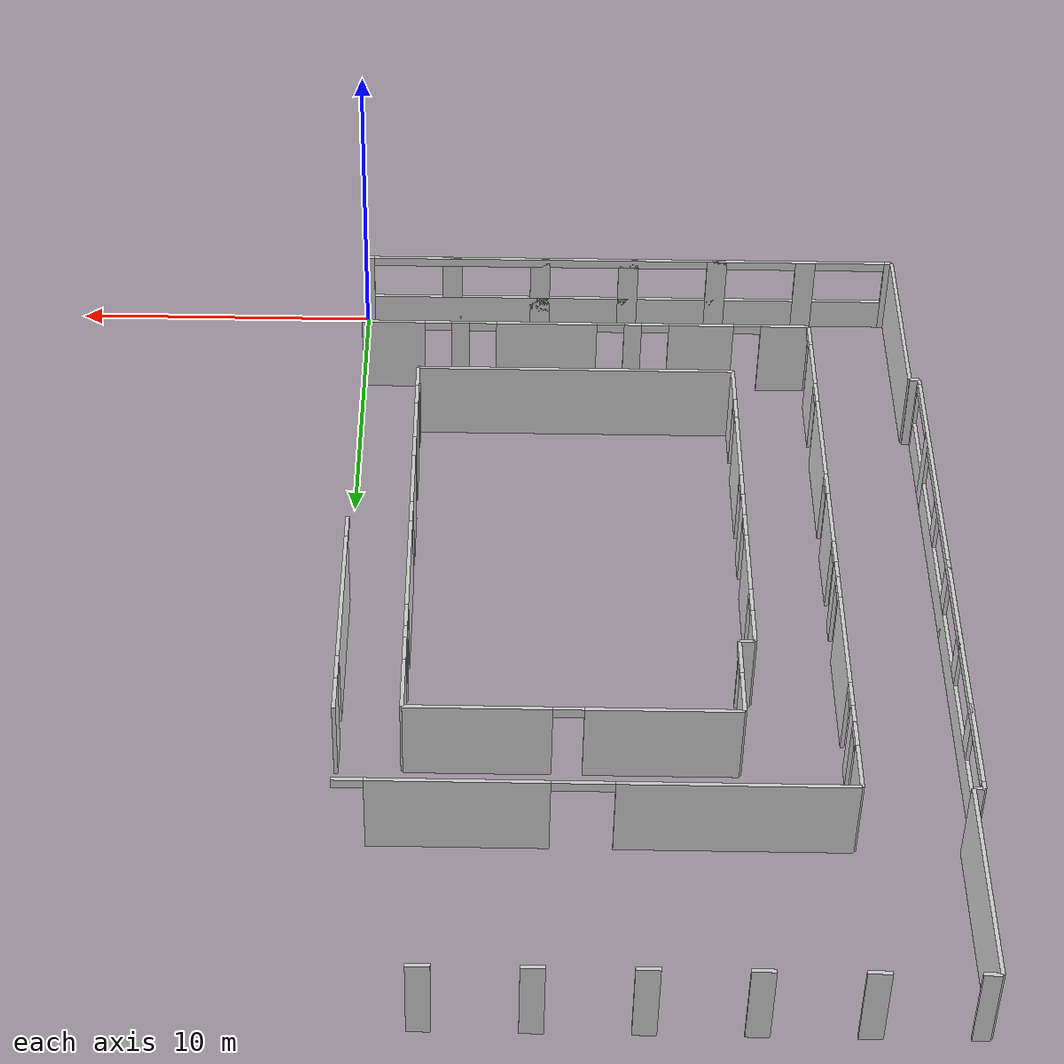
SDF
<sdf version="1.10">
 <model name="fourth_floor_walls">
  <static>true</static>
  <link name="exteriors_001_solid">
   <pose>-0.1270 0.0000 1.3750 0 0 3.141593</pose>
   <collision name="exteriors_001_solid_collision">
    <geometry><box><size>0.2540 0.1199 2.7501</size></box></geometry>
   </collision>
   <visual name="exteriors_001_solid_visual">
    <geometry><box><size>0.2540 0.1199 2.7501</size></box></geometry>
    <material><ambient>0.82 0.82 0.82 1</ambient><diffuse>0.82 0.82 0.82 1</diffuse></material>
   </visual>
  </link>
  <link name="exteriors_002_windows_block_lower_strip">
   <pose>-9.0583 0.0000 0.5461 0 0 3.141593</pose>
   <collision name="exteriors_002_windows_block_lower_strip_collision">
    <geometry><box><size>17.6086 0.1199 1.0922</size></box></geometry>
   </collision>
   <visual name="exteriors_002_windows_block_lower_strip_visual">
    <geometry><box><size>17.6086 0.1199 1.0922</size></box></geometry>
    <material><ambient>0.82 0.82 0.82 1</ambient><diffuse>0.82 0.82 0.82 1</diffuse></material>
   </visual>
  </link>
  <link name="exteriors_002_windows_block_upper_strip">
   <pose>-9.0583 0.0000 2.5942 0 0 3.141593</pose>
   <collision name="exteriors_002_windows_block_upper_strip_collision">
    <geometry><box><size>17.6086 0.1199 0.3117</size></box></geometry>
   </collision>
   <visual name="exteriors_002_windows_block_upper_strip_visual">
    <geometry><box><size>17.6086 0.1199 0.3117</size></box></geometry>
    <material><ambient>0.82 0.82 0.82 1</ambient><diffuse>0.82 0.82 0.82 1</diffuse></material>
   </visual>
  </link>
  <link name="exteriors_002_windows_block_post_1">
   <pose>-2.9623 0.0000 1.3750 0 0 3.141593</pose>
   <collision name="exteriors_002_windows_block_post_1_collision">
    <geometry><box><size>0.6794 0.1199 2.7501</size></box></geometry>
   </collision>
   <visual name="exteriors_002_windows_block_post_1_visual">
    <geometry><box><size>0.6794 0.1199 2.7501</size></box></geometry>
    <material><ambient>0.82 0.82 0.82 1</ambient><diffuse>0.82 0.82 0.82 1</diffuse></material>
   </visual>
  </link>
  <link name="exteriors_002_windows_block_post_2">
   <pose>-6.0103 0.0000 1.3750 0 0 3.141593</pose>
   <collision name="exteriors_002_windows_block_post_2_collision">
    <geometry><box><size>0.6794 0.1199 2.7501</size></box></geometry>
   </collision>
   <visual name="exteriors_002_windows_block_post_2_visual">
    <geometry><box><size>0.6794 0.1199 2.7501</size></box></geometry>
    <material><ambient>0.82 0.82 0.82 1</ambient><diffuse>0.82 0.82 0.82 1</diffuse></material>
   </visual>
  </link>
  <link name="exteriors_002_windows_block_post_3">
   <pose>-9.0583 0.0000 1.3750 0 0 3.141593</pose>
   <collision name="exteriors_002_windows_block_post_3_collision">
    <geometry><box><size>0.6794 0.1199 2.7501</size></box></geometry>
   </collision>
   <visual name="exteriors_002_windows_block_post_3_visual">
    <geometry><box><size>0.6794 0.1199 2.7501</size></box></geometry>
    <material><ambient>0.82 0.82 0.82 1</ambient><diffuse>0.82 0.82 0.82 1</diffuse></material>
   </visual>
  </link>
  <link name="exteriors_002_windows_block_post_4">
   <pose>-12.1063 0.0000 1.3750 0 0 3.141593</pose>
   <collision name="exteriors_002_windows_block_post_4_collision">
    <geometry><box><size>0.6794 0.1199 2.7501</size></box></geometry>
   </collision>
   <visual name="exteriors_002_windows_block_post_4_visual">
    <geometry><box><size>0.6794 0.1199 2.7501</size></box></geometry>
    <material><ambient>0.82 0.82 0.82 1</ambient><diffuse>0.82 0.82 0.82 1</diffuse></material>
   </visual>
  </link>
  <link name="exteriors_002_windows_block_post_5">
   <pose>-15.1543 0.0000 1.3750 0 0 3.141593</pose>
   <collision name="exteriors_002_windows_block_post_5_collision">
    <geometry><box><size>0.6794 0.1199 2.7501</size></box></geometry>
   </collision>
   <visual name="exteriors_002_windows_block_post_5_visual">
    <geometry><box><size>0.6794 0.1199 2.7501</size></box></geometry>
    <material><ambient>0.82 0.82 0.82 1</ambient><diffuse>0.82 0.82 0.82 1</diffuse></material>
   </visual>
  </link>
  <link name="exteriors_003_solid">
   <pose>-17.9895 0.0000 1.3750 0 0 3.141593</pose>
   <collision name="exteriors_003_solid_collision">
    <geometry><box><size>0.2540 0.1199 2.7501</size></box></geometry>
   </collision>
   <visual name="exteriors_003_solid_visual">
    <geometry><box><size>0.2540 0.1199 2.7501</size></box></geometry>
    <material><ambient>0.82 0.82 0.82 1</ambient><diffuse>0.82 0.82 0.82 1</diffuse></material>
   </visual>
  </link>
  <link name="exteriors_005_solid">
   <pose>-18.1166 3.1623 1.3750 0 0 1.570796</pose>
   <collision name="exteriors_005_solid_collision">
    <geometry><box><size>6.3246 0.1199 2.7501</size></box></geometry>
   </collision>
   <visual name="exteriors_005_solid_visual">
    <geometry><box><size>6.3246 0.1199 2.7501</size></box></geometry>
    <material><ambient>0.82 0.82 0.82 1</ambient><diffuse>0.82 0.82 0.82 1</diffuse></material>
   </visual>
  </link>
  <link name="exteriors_007_solid">
   <pose>-18.2690 6.3246 1.3750 0 0 3.141593</pose>
   <collision name="exteriors_007_solid_collision">
    <geometry><box><size>0.3048 0.1199 2.7501</size></box></geometry>
   </collision>
   <visual name="exteriors_007_solid_visual">
    <geometry><box><size>0.3048 0.1199 2.7501</size></box></geometry>
    <material><ambient>0.82 0.82 0.82 1</ambient><diffuse>0.82 0.82 0.82 1</diffuse></material>
   </visual>
  </link>
  <link name="exteriors_009_solid">
   <pose>-18.4214 6.4516 1.3750 0 0 1.570796</pose>
   <collision name="exteriors_009_solid_collision">
    <geometry><box><size>0.2540 0.1199 2.7501</size></box></geometry>
   </collision>
   <visual name="exteriors_009_solid_visual">
    <geometry><box><size>0.2540 0.1199 2.7501</size></box></geometry>
    <material><ambient>0.82 0.82 0.82 1</ambient><diffuse>0.82 0.82 0.82 1</diffuse></material>
   </visual>
  </link>
  <link name="exteriors_010_windows_block_lower_strip">
   <pose>-18.4214 15.3829 0.5461 0 0 1.570796</pose>
   <collision name="exteriors_010_windows_block_lower_strip_collision">
    <geometry><box><size>17.6086 0.1199 1.0922</size></box></geometry>
   </collision>
   <visual name="exteriors_010_windows_block_lower_strip_visual">
    <geometry><box><size>17.6086 0.1199 1.0922</size></box></geometry>
    <material><ambient>0.82 0.82 0.82 1</ambient><diffuse>0.82 0.82 0.82 1</diffuse></material>
   </visual>
  </link>
  <link name="exteriors_010_windows_block_upper_strip">
   <pose>-18.4214 15.3829 2.5942 0 0 1.570796</pose>
   <collision name="exteriors_010_windows_block_upper_strip_collision">
    <geometry><box><size>17.6086 0.1199 0.3117</size></box></geometry>
   </collision>
   <visual name="exteriors_010_windows_block_upper_strip_visual">
    <geometry><box><size>17.6086 0.1199 0.3117</size></box></geometry>
    <material><ambient>0.82 0.82 0.82 1</ambient><diffuse>0.82 0.82 0.82 1</diffuse></material>
   </visual>
  </link>
  <link name="exteriors_010_windows_block_post_1">
   <pose>-18.4214 9.2869 1.3750 0 0 1.570796</pose>
   <collision name="exteriors_010_windows_block_post_1_collision">
    <geometry><box><size>0.6794 0.1199 2.7501</size></box></geometry>
   </collision>
   <visual name="exteriors_010_windows_block_post_1_visual">
    <geometry><box><size>0.6794 0.1199 2.7501</size></box></geometry>
    <material><ambient>0.82 0.82 0.82 1</ambient><diffuse>0.82 0.82 0.82 1</diffuse></material>
   </visual>
  </link>
  <link name="exteriors_010_windows_block_post_2">
   <pose>-18.4214 12.3349 1.3750 0 0 1.570796</pose>
   <collision name="exteriors_010_windows_block_post_2_collision">
    <geometry><box><size>0.6794 0.1199 2.7501</size></box></geometry>
   </collision>
   <visual name="exteriors_010_windows_block_post_2_visual">
    <geometry><box><size>0.6794 0.1199 2.7501</size></box></geometry>
    <material><ambient>0.82 0.82 0.82 1</ambient><diffuse>0.82 0.82 0.82 1</diffuse></material>
   </visual>
  </link>
  <link name="exteriors_010_windows_block_post_3">
   <pose>-18.4214 15.3829 1.3750 0 0 1.570796</pose>
   <collision name="exteriors_010_windows_block_post_3_collision">
    <geometry><box><size>0.6794 0.1199 2.7501</size></box></geometry>
   </collision>
   <visual name="exteriors_010_windows_block_post_3_visual">
    <geometry><box><size>0.6794 0.1199 2.7501</size></box></geometry>
    <material><ambient>0.82 0.82 0.82 1</ambient><diffuse>0.82 0.82 0.82 1</diffuse></material>
   </visual>
  </link>
  <link name="exteriors_010_windows_block_post_4">
   <pose>-18.4214 18.4309 1.3750 0 0 1.570796</pose>
   <collision name="exteriors_010_windows_block_post_4_collision">
    <geometry><box><size>0.6794 0.1199 2.7501</size></box></geometry>
   </collision>
   <visual name="exteriors_010_windows_block_post_4_visual">
    <geometry><box><size>0.6794 0.1199 2.7501</size></box></geometry>
    <material><ambient>0.82 0.82 0.82 1</ambient><diffuse>0.82 0.82 0.82 1</diffuse></material>
   </visual>
  </link>
  <link name="exteriors_010_windows_block_post_5">
   <pose>-18.4214 21.4789 1.3750 0 0 1.570796</pose>
   <collision name="exteriors_010_windows_block_post_5_collision">
    <geometry><box><size>0.6794 0.1199 2.7501</size></box></geometry>
   </collision>
   <visual name="exteriors_010_windows_block_post_5_visual">
    <geometry><box><size>0.6794 0.1199 2.7501</size></box></geometry>
    <material><ambient>0.82 0.82 0.82 1</ambient><diffuse>0.82 0.82 0.82 1</diffuse></material>
   </visual>
  </link>
  <link name="exteriors_011_solid">
   <pose>-18.4214 24.3142 1.3750 0 0 1.570796</pose>
   <collision name="exteriors_011_solid_collision">
    <geometry><box><size>0.2540 0.1199 2.7501</size></box></geometry>
   </collision>
   <visual name="exteriors_011_solid_visual">
    <geometry><box><size>0.2540 0.1199 2.7501</size></box></geometry>
    <material><ambient>0.82 0.82 0.82 1</ambient><diffuse>0.82 0.82 0.82 1</diffuse></material>
   </visual>
  </link>
  <link name="exteriors_013_solid">
   <pose>-18.2690 24.4412 1.3750 0 0 0.000000</pose>
   <collision name="exteriors_013_solid_collision">
    <geometry><box><size>0.3048 0.1199 2.7501</size></box></geometry>
   </collision>
   <visual name="exteriors_013_solid_visual">
    <geometry><box><size>0.3048 0.1199 2.7501</size></box></geometry>
    <material><ambient>0.82 0.82 0.82 1</ambient><diffuse>0.82 0.82 0.82 1</diffuse></material>
   </visual>
  </link>
  <link name="exteriors_015_solid">
   <pose>-18.1166 27.7431 1.3750 0 0 1.570796</pose>
   <collision name="exteriors_015_solid_collision">
    <geometry><box><size>6.6040 0.1199 2.7501</size></box></geometry>
   </collision>
   <visual name="exteriors_015_solid_visual">
    <geometry><box><size>6.6040 0.1199 2.7501</size></box></geometry>
    <material><ambient>0.82 0.82 0.82 1</ambient><diffuse>0.82 0.82 0.82 1</diffuse></material>
   </visual>
  </link>
  <link name="exteriors_017_solid">
   <pose>-17.8625 31.0451 1.3750 0 0 0.000000</pose>
   <collision name="exteriors_017_solid_collision">
    <geometry><box><size>0.5080 0.1199 2.7501</size></box></geometry>
   </collision>
   <visual name="exteriors_017_solid_visual">
    <geometry><box><size>0.5080 0.1199 2.7501</size></box></geometry>
    <material><ambient>0.82 0.82 0.82 1</ambient><diffuse>0.82 0.82 0.82 1</diffuse></material>
   </visual>
  </link>
  <link name="exteriors_018_windows_block_post_1">
   <pose>-14.9003 31.0451 1.3750 0 0 0.000000</pose>
   <collision name="exteriors_018_windows_block_post_1_collision">
    <geometry><box><size>0.6794 0.1199 2.7501</size></box></geometry>
   </collision>
   <visual name="exteriors_018_windows_block_post_1_visual">
    <geometry><box><size>0.6794 0.1199 2.7501</size></box></geometry>
    <material><ambient>0.82 0.82 0.82 1</ambient><diffuse>0.82 0.82 0.82 1</diffuse></material>
   </visual>
  </link>
  <link name="exteriors_018_windows_block_post_2">
   <pose>-11.8523 31.0451 1.3750 0 0 0.000000</pose>
   <collision name="exteriors_018_windows_block_post_2_collision">
    <geometry><box><size>0.6794 0.1199 2.7501</size></box></geometry>
   </collision>
   <visual name="exteriors_018_windows_block_post_2_visual">
    <geometry><box><size>0.6794 0.1199 2.7501</size></box></geometry>
    <material><ambient>0.82 0.82 0.82 1</ambient><diffuse>0.82 0.82 0.82 1</diffuse></material>
   </visual>
  </link>
  <link name="exteriors_018_windows_block_post_3">
   <pose>-8.8043 31.0451 1.3750 0 0 0.000000</pose>
   <collision name="exteriors_018_windows_block_post_3_collision">
    <geometry><box><size>0.6794 0.1199 2.7501</size></box></geometry>
   </collision>
   <visual name="exteriors_018_windows_block_post_3_visual">
    <geometry><box><size>0.6794 0.1199 2.7501</size></box></geometry>
    <material><ambient>0.82 0.82 0.82 1</ambient><diffuse>0.82 0.82 0.82 1</diffuse></material>
   </visual>
  </link>
  <link name="exteriors_018_windows_block_post_4">
   <pose>-5.7563 31.0451 1.3750 0 0 0.000000</pose>
   <collision name="exteriors_018_windows_block_post_4_collision">
    <geometry><box><size>0.6794 0.1199 2.7501</size></box></geometry>
   </collision>
   <visual name="exteriors_018_windows_block_post_4_visual">
    <geometry><box><size>0.6794 0.1199 2.7501</size></box></geometry>
    <material><ambient>0.82 0.82 0.82 1</ambient><diffuse>0.82 0.82 0.82 1</diffuse></material>
   </visual>
  </link>
  <link name="exteriors_018_windows_block_post_5">
   <pose>-2.7083 31.0451 1.3750 0 0 0.000000</pose>
   <collision name="exteriors_018_windows_block_post_5_collision">
    <geometry><box><size>0.6794 0.1199 2.7501</size></box></geometry>
   </collision>
   <visual name="exteriors_018_windows_block_post_5_visual">
    <geometry><box><size>0.6794 0.1199 2.7501</size></box></geometry>
    <material><ambient>0.82 0.82 0.82 1</ambient><diffuse>0.82 0.82 0.82 1</diffuse></material>
   </visual>
  </link>
  <link name="hallways_001_solid">
   <pose>-1.0541 3.5814 1.3750 0 0 3.141593</pose>
   <collision name="hallways_001_solid_collision">
    <geometry><box><size>2.1082 0.1199 2.7501</size></box></geometry>
   </collision>
   <visual name="hallways_001_solid_visual">
    <geometry><box><size>2.1082 0.1199 2.7501</size></box></geometry>
    <material><ambient>0.82 0.82 0.82 1</ambient><diffuse>0.82 0.82 0.82 1</diffuse></material>
   </visual>
  </link>
  <link name="hallways_002_door_lintel">
   <pose>-2.5654 3.5814 2.5942 0 0 3.141593</pose>
   <collision name="hallways_002_door_lintel_collision">
    <geometry><box><size>0.9144 0.1199 0.3117</size></box></geometry>
   </collision>
   <visual name="hallways_002_door_lintel_visual">
    <geometry><box><size>0.9144 0.1199 0.3117</size></box></geometry>
    <material><ambient>0.82 0.82 0.82 1</ambient><diffuse>0.82 0.82 0.82 1</diffuse></material>
   </visual>
  </link>
  <link name="hallways_003_solid">
   <pose>-3.3147 3.5814 1.3750 0 0 3.141593</pose>
   <collision name="hallways_003_solid_collision">
    <geometry><box><size>0.5842 0.1199 2.7501</size></box></geometry>
   </collision>
   <visual name="hallways_003_solid_visual">
    <geometry><box><size>0.5842 0.1199 2.7501</size></box></geometry>
    <material><ambient>0.82 0.82 0.82 1</ambient><diffuse>0.82 0.82 0.82 1</diffuse></material>
   </visual>
  </link>
  <link name="hallways_004_door_lintel">
   <pose>-4.0640 3.5814 2.5942 0 0 3.141593</pose>
   <collision name="hallways_004_door_lintel_collision">
    <geometry><box><size>0.9144 0.1199 0.3117</size></box></geometry>
   </collision>
   <visual name="hallways_004_door_lintel_visual">
    <geometry><box><size>0.9144 0.1199 0.3117</size></box></geometry>
    <material><ambient>0.82 0.82 0.82 1</ambient><diffuse>0.82 0.82 0.82 1</diffuse></material>
   </visual>
  </link>
  <link name="hallways_005_solid">
   <pose>-6.2103 3.5814 1.3750 0 0 3.141593</pose>
   <collision name="hallways_005_solid_collision">
    <geometry><box><size>3.3782 0.1199 2.7501</size></box></geometry>
   </collision>
   <visual name="hallways_005_solid_visual">
    <geometry><box><size>3.3782 0.1199 2.7501</size></box></geometry>
    <material><ambient>0.82 0.82 0.82 1</ambient><diffuse>0.82 0.82 0.82 1</diffuse></material>
   </visual>
  </link>
  <link name="hallways_006_door_lintel">
   <pose>-8.3566 3.5814 2.5942 0 0 3.141593</pose>
   <collision name="hallways_006_door_lintel_collision">
    <geometry><box><size>0.9144 0.1199 0.3117</size></box></geometry>
   </collision>
   <visual name="hallways_006_door_lintel_visual">
    <geometry><box><size>0.9144 0.1199 0.3117</size></box></geometry>
    <material><ambient>0.82 0.82 0.82 1</ambient><diffuse>0.82 0.82 0.82 1</diffuse></material>
   </visual>
  </link>
  <link name="hallways_007_solid">
   <pose>-9.1059 3.5814 1.3750 0 0 3.141593</pose>
   <collision name="hallways_007_solid_collision">
    <geometry><box><size>0.5842 0.1199 2.7501</size></box></geometry>
   </collision>
   <visual name="hallways_007_solid_visual">
    <geometry><box><size>0.5842 0.1199 2.7501</size></box></geometry>
    <material><ambient>0.82 0.82 0.82 1</ambient><diffuse>0.82 0.82 0.82 1</diffuse></material>
   </visual>
  </link>
  <link name="hallways_008_door_lintel">
   <pose>-9.8552 3.5814 2.5942 0 0 3.141593</pose>
   <collision name="hallways_008_door_lintel_collision">
    <geometry><box><size>0.9144 0.1199 0.3117</size></box></geometry>
   </collision>
   <visual name="hallways_008_door_lintel_visual">
    <geometry><box><size>0.9144 0.1199 0.3117</size></box></geometry>
    <material><ambient>0.82 0.82 0.82 1</ambient><diffuse>0.82 0.82 0.82 1</diffuse></material>
   </visual>
  </link>
  <link name="hallways_009_solid">
   <pose>-11.3982 3.5814 1.3750 0 0 3.141593</pose>
   <collision name="hallways_009_solid_collision">
    <geometry><box><size>2.1717 0.1199 2.7501</size></box></geometry>
   </collision>
   <visual name="hallways_009_solid_visual">
    <geometry><box><size>2.1717 0.1199 2.7501</size></box></geometry>
    <material><ambient>0.82 0.82 0.82 1</ambient><diffuse>0.82 0.82 0.82 1</diffuse></material>
   </visual>
  </link>
  <link name="hallways_010_door_lintel">
   <pose>-12.9413 3.5814 2.5942 0 0 3.141593</pose>
   <collision name="hallways_010_door_lintel_collision">
    <geometry><box><size>0.9144 0.1199 0.3117</size></box></geometry>
   </collision>
   <visual name="hallways_010_door_lintel_visual">
    <geometry><box><size>0.9144 0.1199 0.3117</size></box></geometry>
    <material><ambient>0.82 0.82 0.82 1</ambient><diffuse>0.82 0.82 0.82 1</diffuse></material>
   </visual>
  </link>
  <link name="hallways_011_solid">
   <pose>-14.1986 3.5814 1.3750 0 0 3.141593</pose>
   <collision name="hallways_011_solid_collision">
    <geometry><box><size>1.6002 0.1199 2.7501</size></box></geometry>
   </collision>
   <visual name="hallways_011_solid_visual">
    <geometry><box><size>1.6002 0.1199 2.7501</size></box></geometry>
    <material><ambient>0.82 0.82 0.82 1</ambient><diffuse>0.82 0.82 0.82 1</diffuse></material>
   </visual>
  </link>
  <link name="hallways_013_solid">
   <pose>-14.9987 3.6068 1.3750 0 0 1.570796</pose>
   <collision name="hallways_013_solid_collision">
    <geometry><box><size>0.0508 0.1199 2.7501</size></box></geometry>
   </collision>
   <visual name="hallways_013_solid_visual">
    <geometry><box><size>0.0508 0.1199 2.7501</size></box></geometry>
    <material><ambient>0.82 0.82 0.82 1</ambient><diffuse>0.82 0.82 0.82 1</diffuse></material>
   </visual>
  </link>
  <link name="hallways_014_door_lintel">
   <pose>-14.9987 4.0894 2.5942 0 0 1.570796</pose>
   <collision name="hallways_014_door_lintel_collision">
    <geometry><box><size>0.9144 0.1199 0.3117</size></box></geometry>
   </collision>
   <visual name="hallways_014_door_lintel_visual">
    <geometry><box><size>0.9144 0.1199 0.3117</size></box></geometry>
    <material><ambient>0.82 0.82 0.82 1</ambient><diffuse>0.82 0.82 0.82 1</diffuse></material>
   </visual>
  </link>
  <link name="hallways_015_solid">
   <pose>-14.9987 5.5753 1.3750 0 0 1.570796</pose>
   <collision name="hallways_015_solid_collision">
    <geometry><box><size>2.0574 0.1199 2.7501</size></box></geometry>
   </collision>
   <visual name="hallways_015_solid_visual">
    <geometry><box><size>2.0574 0.1199 2.7501</size></box></geometry>
    <material><ambient>0.82 0.82 0.82 1</ambient><diffuse>0.82 0.82 0.82 1</diffuse></material>
   </visual>
  </link>
  <link name="hallways_016_door_lintel">
   <pose>-14.9987 7.0612 2.5942 0 0 1.570796</pose>
   <collision name="hallways_016_door_lintel_collision">
    <geometry><box><size>0.9144 0.1199 0.3117</size></box></geometry>
   </collision>
   <visual name="hallways_016_door_lintel_visual">
    <geometry><box><size>0.9144 0.1199 0.3117</size></box></geometry>
    <material><ambient>0.82 0.82 0.82 1</ambient><diffuse>0.82 0.82 0.82 1</diffuse></material>
   </visual>
  </link>
  <link name="hallways_017_solid">
   <pose>-14.9987 9.3218 1.3750 0 0 1.570796</pose>
   <collision name="hallways_017_solid_collision">
    <geometry><box><size>3.6068 0.1199 2.7501</size></box></geometry>
   </collision>
   <visual name="hallways_017_solid_visual">
    <geometry><box><size>3.6068 0.1199 2.7501</size></box></geometry>
    <material><ambient>0.82 0.82 0.82 1</ambient><diffuse>0.82 0.82 0.82 1</diffuse></material>
   </visual>
  </link>
  <link name="hallways_018_door_lintel">
   <pose>-14.9987 11.5824 2.5942 0 0 1.570796</pose>
   <collision name="hallways_018_door_lintel_collision">
    <geometry><box><size>0.9144 0.1199 0.3117</size></box></geometry>
   </collision>
   <visual name="hallways_018_door_lintel_visual">
    <geometry><box><size>0.9144 0.1199 0.3117</size></box></geometry>
    <material><ambient>0.82 0.82 0.82 1</ambient><diffuse>0.82 0.82 0.82 1</diffuse></material>
   </visual>
  </link>
  <link name="hallways_019_solid">
   <pose>-14.9987 13.1470 1.3750 0 0 1.570796</pose>
   <collision name="hallways_019_solid_collision">
    <geometry><box><size>2.2149 0.1199 2.7501</size></box></geometry>
   </collision>
   <visual name="hallways_019_solid_visual">
    <geometry><box><size>2.2149 0.1199 2.7501</size></box></geometry>
    <material><ambient>0.82 0.82 0.82 1</ambient><diffuse>0.82 0.82 0.82 1</diffuse></material>
   </visual>
  </link>
  <link name="hallways_020_door_lintel">
   <pose>-14.9987 14.7117 2.5942 0 0 1.570796</pose>
   <collision name="hallways_020_door_lintel_collision">
    <geometry><box><size>0.9144 0.1199 0.3117</size></box></geometry>
   </collision>
   <visual name="hallways_020_door_lintel_visual">
    <geometry><box><size>0.9144 0.1199 0.3117</size></box></geometry>
    <material><ambient>0.82 0.82 0.82 1</ambient><diffuse>0.82 0.82 0.82 1</diffuse></material>
   </visual>
  </link>
  <link name="hallways_021_solid">
   <pose>-14.9987 15.4991 1.3750 0 0 1.570796</pose>
   <collision name="hallways_021_solid_collision">
    <geometry><box><size>0.6604 0.1199 2.7501</size></box></geometry>
   </collision>
   <visual name="hallways_021_solid_visual">
    <geometry><box><size>0.6604 0.1199 2.7501</size></box></geometry>
    <material><ambient>0.82 0.82 0.82 1</ambient><diffuse>0.82 0.82 0.82 1</diffuse></material>
   </visual>
  </link>
  <link name="hallways_022_door_lintel">
   <pose>-14.9987 16.2865 2.5942 0 0 1.570796</pose>
   <collision name="hallways_022_door_lintel_collision">
    <geometry><box><size>0.9144 0.1199 0.3117</size></box></geometry>
   </collision>
   <visual name="hallways_022_door_lintel_visual">
    <geometry><box><size>0.9144 0.1199 0.3117</size></box></geometry>
    <material><ambient>0.82 0.82 0.82 1</ambient><diffuse>0.82 0.82 0.82 1</diffuse></material>
   </visual>
  </link>
  <link name="hallways_023_solid">
   <pose>-14.9987 18.5471 1.3750 0 0 1.570796</pose>
   <collision name="hallways_023_solid_collision">
    <geometry><box><size>3.6068 0.1199 2.7501</size></box></geometry>
   </collision>
   <visual name="hallways_023_solid_visual">
    <geometry><box><size>3.6068 0.1199 2.7501</size></box></geometry>
    <material><ambient>0.82 0.82 0.82 1</ambient><diffuse>0.82 0.82 0.82 1</diffuse></material>
   </visual>
  </link>
  <link name="hallways_024_door_lintel">
   <pose>-14.9987 20.8077 2.5942 0 0 1.570796</pose>
   <collision name="hallways_024_door_lintel_collision">
    <geometry><box><size>0.9144 0.1199 0.3117</size></box></geometry>
   </collision>
   <visual name="hallways_024_door_lintel_visual">
    <geometry><box><size>0.9144 0.1199 0.3117</size></box></geometry>
    <material><ambient>0.82 0.82 0.82 1</ambient><diffuse>0.82 0.82 0.82 1</diffuse></material>
   </visual>
  </link>
  <link name="hallways_025_solid">
   <pose>-14.9987 21.5951 1.3750 0 0 1.570796</pose>
   <collision name="hallways_025_solid_collision">
    <geometry><box><size>0.6604 0.1199 2.7501</size></box></geometry>
   </collision>
   <visual name="hallways_025_solid_visual">
    <geometry><box><size>0.6604 0.1199 2.7501</size></box></geometry>
    <material><ambient>0.82 0.82 0.82 1</ambient><diffuse>0.82 0.82 0.82 1</diffuse></material>
   </visual>
  </link>
  <link name="hallways_026_door_lintel">
   <pose>-14.9987 22.3825 2.5942 0 0 1.570796</pose>
   <collision name="hallways_026_door_lintel_collision">
    <geometry><box><size>0.9144 0.1199 0.3117</size></box></geometry>
   </collision>
   <visual name="hallways_026_door_lintel_visual">
    <geometry><box><size>0.9144 0.1199 0.3117</size></box></geometry>
    <material><ambient>0.82 0.82 0.82 1</ambient><diffuse>0.82 0.82 0.82 1</diffuse></material>
   </visual>
  </link>
  <link name="hallways_027_solid">
   <pose>-14.9987 23.6398 1.3750 0 0 1.570796</pose>
   <collision name="hallways_027_solid_collision">
    <geometry><box><size>1.6002 0.1199 2.7501</size></box></geometry>
   </collision>
   <visual name="hallways_027_solid_visual">
    <geometry><box><size>1.6002 0.1199 2.7501</size></box></geometry>
    <material><ambient>0.82 0.82 0.82 1</ambient><diffuse>0.82 0.82 0.82 1</diffuse></material>
   </visual>
  </link>
  <link name="hallways_029_solid">
   <pose>-11.5443 24.4399 1.3750 0 0 0.000000</pose>
   <collision name="hallways_029_solid_collision">
    <geometry><box><size>6.9088 0.1199 2.7501</size></box></geometry>
   </collision>
   <visual name="hallways_029_solid_visual">
    <geometry><box><size>6.9088 0.1199 2.7501</size></box></geometry>
    <material><ambient>0.82 0.82 0.82 1</ambient><diffuse>0.82 0.82 0.82 1</diffuse></material>
   </visual>
  </link>
  <link name="hallways_030_door_lintel">
   <pose>-7.1755 24.4399 2.5942 0 0 0.000000</pose>
   <collision name="hallways_030_door_lintel_collision">
    <geometry><box><size>1.8288 0.1199 0.3117</size></box></geometry>
   </collision>
   <visual name="hallways_030_door_lintel_visual">
    <geometry><box><size>1.8288 0.1199 0.3117</size></box></geometry>
    <material><ambient>0.82 0.82 0.82 1</ambient><diffuse>0.82 0.82 0.82 1</diffuse></material>
   </visual>
  </link>
  <link name="hallways_031_solid">
   <pose>-3.6195 24.4399 1.3750 0 0 0.000000</pose>
   <collision name="hallways_031_solid_collision">
    <geometry><box><size>5.2832 0.1199 2.7501</size></box></geometry>
   </collision>
   <visual name="hallways_031_solid_visual">
    <geometry><box><size>5.2832 0.1199 2.7501</size></box></geometry>
    <material><ambient>0.82 0.82 0.82 1</ambient><diffuse>0.82 0.82 0.82 1</diffuse></material>
   </visual>
  </link>
  <link name="hallways_032_door_lintel">
   <pose>-0.5207 24.4399 2.5942 0 0 0.000000</pose>
   <collision name="hallways_032_door_lintel_collision">
    <geometry><box><size>0.9144 0.1199 0.3117</size></box></geometry>
   </collision>
   <visual name="hallways_032_door_lintel_visual">
    <geometry><box><size>0.9144 0.1199 0.3117</size></box></geometry>
    <material><ambient>0.82 0.82 0.82 1</ambient><diffuse>0.82 0.82 0.82 1</diffuse></material>
   </visual>
  </link>
  <link name="inner_walls_1_023_solid">
   <pose>0.0063 21.0820 1.3750 0 0 4.712389</pose>
   <collision name="inner_walls_1_023_solid_collision">
    <geometry><box><size>1.2192 0.1199 2.7501</size></box></geometry>
   </collision>
   <visual name="inner_walls_1_023_solid_visual">
    <geometry><box><size>1.2192 0.1199 2.7501</size></box></geometry>
    <material><ambient>0.82 0.82 0.82 1</ambient><diffuse>0.82 0.82 0.82 1</diffuse></material>
   </visual>
  </link>
  <link name="inner_walls_1_024_door_lintel">
   <pose>0.0063 20.0152 2.5942 0 0 4.712389</pose>
   <collision name="inner_walls_1_024_door_lintel_collision">
    <geometry><box><size>0.9144 0.1199 0.3117</size></box></geometry>
   </collision>
   <visual name="inner_walls_1_024_door_lintel_visual">
    <geometry><box><size>0.9144 0.1199 0.3117</size></box></geometry>
    <material><ambient>0.82 0.82 0.82 1</ambient><diffuse>0.82 0.82 0.82 1</diffuse></material>
   </visual>
  </link>
  <link name="inner_walls_1_025_solid">
   <pose>0.0063 16.9418 1.3750 0 0 4.712389</pose>
   <collision name="inner_walls_1_025_solid_collision">
    <geometry><box><size>5.2324 0.1199 2.7501</size></box></geometry>
   </collision>
   <visual name="inner_walls_1_025_solid_visual">
    <geometry><box><size>5.2324 0.1199 2.7501</size></box></geometry>
    <material><ambient>0.82 0.82 0.82 1</ambient><diffuse>0.82 0.82 0.82 1</diffuse></material>
   </visual>
  </link>
  <link name="inner_walls_1_026_door_lintel">
   <pose>0.0063 13.8684 2.5942 0 0 4.712389</pose>
   <collision name="inner_walls_1_026_door_lintel_collision">
    <geometry><box><size>0.9144 0.1199 0.3117</size></box></geometry>
   </collision>
   <visual name="inner_walls_1_026_door_lintel_visual">
    <geometry><box><size>0.9144 0.1199 0.3117</size></box></geometry>
    <material><ambient>0.82 0.82 0.82 1</ambient><diffuse>0.82 0.82 0.82 1</diffuse></material>
   </visual>
  </link>
  <link name="inner_walls_2_001_solid">
   <pose>-7.1450 6.0198 1.3750 0 0 3.141593</pose>
   <collision name="inner_walls_2_001_solid_collision">
    <geometry><box><size>10.3632 0.1199 2.7501</size></box></geometry>
   </collision>
   <visual name="inner_walls_2_001_solid_visual">
    <geometry><box><size>10.3632 0.1199 2.7501</size></box></geometry>
    <material><ambient>0.82 0.82 0.82 1</ambient><diffuse>0.82 0.82 0.82 1</diffuse></material>
   </visual>
  </link>
  <link name="inner_walls_2_003_solid">
   <pose>-12.3266 6.7437 1.3750 0 0 1.570796</pose>
   <collision name="inner_walls_2_003_solid_collision">
    <geometry><box><size>1.4478 0.1199 2.7501</size></box></geometry>
   </collision>
   <visual name="inner_walls_2_003_solid_visual">
    <geometry><box><size>1.4478 0.1199 2.7501</size></box></geometry>
    <material><ambient>0.82 0.82 0.82 1</ambient><diffuse>0.82 0.82 0.82 1</diffuse></material>
   </visual>
  </link>
  <link name="inner_walls_2_004_door_lintel">
   <pose>-12.3266 7.9248 2.5942 0 0 1.570796</pose>
   <collision name="inner_walls_2_004_door_lintel_collision">
    <geometry><box><size>0.9144 0.1199 0.3117</size></box></geometry>
   </collision>
   <visual name="inner_walls_2_004_door_lintel_visual">
    <geometry><box><size>0.9144 0.1199 0.3117</size></box></geometry>
    <material><ambient>0.82 0.82 0.82 1</ambient><diffuse>0.82 0.82 0.82 1</diffuse></material>
   </visual>
  </link>
  <link name="inner_walls_2_005_solid">
   <pose>-12.3266 9.7917 1.3750 0 0 1.570796</pose>
   <collision name="inner_walls_2_005_solid_collision">
    <geometry><box><size>2.8194 0.1199 2.7501</size></box></geometry>
   </collision>
   <visual name="inner_walls_2_005_solid_visual">
    <geometry><box><size>2.8194 0.1199 2.7501</size></box></geometry>
    <material><ambient>0.82 0.82 0.82 1</ambient><diffuse>0.82 0.82 0.82 1</diffuse></material>
   </visual>
  </link>
  <link name="inner_walls_2_006_door_lintel">
   <pose>-12.3266 11.6586 2.5942 0 0 1.570796</pose>
   <collision name="inner_walls_2_006_door_lintel_collision">
    <geometry><box><size>0.9144 0.1199 0.3117</size></box></geometry>
   </collision>
   <visual name="inner_walls_2_006_door_lintel_visual">
    <geometry><box><size>0.9144 0.1199 0.3117</size></box></geometry>
    <material><ambient>0.82 0.82 0.82 1</ambient><diffuse>0.82 0.82 0.82 1</diffuse></material>
   </visual>
  </link>
  <link name="inner_walls_2_007_solid">
   <pose>-12.3266 12.6111 1.3750 0 0 1.570796</pose>
   <collision name="inner_walls_2_007_solid_collision">
    <geometry><box><size>0.9906 0.1199 2.7501</size></box></geometry>
   </collision>
   <visual name="inner_walls_2_007_solid_visual">
    <geometry><box><size>0.9906 0.1199 2.7501</size></box></geometry>
    <material><ambient>0.82 0.82 0.82 1</ambient><diffuse>0.82 0.82 0.82 1</diffuse></material>
   </visual>
  </link>
  <link name="inner_walls_2_008_door_lintel">
   <pose>-12.3266 13.5636 2.5942 0 0 1.570796</pose>
   <collision name="inner_walls_2_008_door_lintel_collision">
    <geometry><box><size>0.9144 0.1199 0.3117</size></box></geometry>
   </collision>
   <visual name="inner_walls_2_008_door_lintel_visual">
    <geometry><box><size>0.9144 0.1199 0.3117</size></box></geometry>
    <material><ambient>0.82 0.82 0.82 1</ambient><diffuse>0.82 0.82 0.82 1</diffuse></material>
   </visual>
  </link>
  <link name="inner_walls_2_009_solid">
   <pose>-12.3266 15.2400 1.3750 0 0 1.570796</pose>
   <collision name="inner_walls_2_009_solid_collision">
    <geometry><box><size>2.4384 0.1199 2.7501</size></box></geometry>
   </collision>
   <visual name="inner_walls_2_009_solid_visual">
    <geometry><box><size>2.4384 0.1199 2.7501</size></box></geometry>
    <material><ambient>0.82 0.82 0.82 1</ambient><diffuse>0.82 0.82 0.82 1</diffuse></material>
   </visual>
  </link>
  <link name="inner_walls_2_010_door_lintel">
   <pose>-12.3266 16.9164 2.5942 0 0 1.570796</pose>
   <collision name="inner_walls_2_010_door_lintel_collision">
    <geometry><box><size>0.9144 0.1199 0.3117</size></box></geometry>
   </collision>
   <visual name="inner_walls_2_010_door_lintel_visual">
    <geometry><box><size>0.9144 0.1199 0.3117</size></box></geometry>
    <material><ambient>0.82 0.82 0.82 1</ambient><diffuse>0.82 0.82 0.82 1</diffuse></material>
   </visual>
  </link>
  <link name="inner_walls_2_011_solid">
   <pose>-12.3266 18.0340 1.3750 0 0 1.570796</pose>
   <collision name="inner_walls_2_011_solid_collision">
    <geometry><box><size>1.3208 0.1199 2.7501</size></box></geometry>
   </collision>
   <visual name="inner_walls_2_011_solid_visual">
    <geometry><box><size>1.3208 0.1199 2.7501</size></box></geometry>
    <material><ambient>0.82 0.82 0.82 1</ambient><diffuse>0.82 0.82 0.82 1</diffuse></material>
   </visual>
  </link>
  <link name="inner_walls_2_013_solid">
   <pose>-12.0980 18.6944 1.3750 0 0 0.000000</pose>
   <collision name="inner_walls_2_013_solid_collision">
    <geometry><box><size>0.4572 0.1199 2.7501</size></box></geometry>
   </collision>
   <visual name="inner_walls_2_013_solid_visual">
    <geometry><box><size>0.4572 0.1199 2.7501</size></box></geometry>
    <material><ambient>0.82 0.82 0.82 1</ambient><diffuse>0.82 0.82 0.82 1</diffuse></material>
   </visual>
  </link>
  <link name="inner_walls_2_015_door_lintel">
   <pose>-11.8694 19.3548 2.5942 0 0 1.570796</pose>
   <collision name="inner_walls_2_015_door_lintel_collision">
    <geometry><box><size>1.3208 0.1199 0.3117</size></box></geometry>
   </collision>
   <visual name="inner_walls_2_015_door_lintel_visual">
    <geometry><box><size>1.3208 0.1199 0.3117</size></box></geometry>
    <material><ambient>0.82 0.82 0.82 1</ambient><diffuse>0.82 0.82 0.82 1</diffuse></material>
   </visual>
  </link>
  <link name="inner_walls_2_016_solid">
   <pose>-11.8694 20.7899 1.3750 0 0 1.570796</pose>
   <collision name="inner_walls_2_016_solid_collision">
    <geometry><box><size>1.5494 0.1199 2.7501</size></box></geometry>
   </collision>
   <visual name="inner_walls_2_016_solid_visual">
    <geometry><box><size>1.5494 0.1199 2.7501</size></box></geometry>
    <material><ambient>0.82 0.82 0.82 1</ambient><diffuse>0.82 0.82 0.82 1</diffuse></material>
   </visual>
  </link>
  <link name="inner_walls_2_018_solid">
   <pose>-9.5580 21.5646 1.3750 0 0 0.000000</pose>
   <collision name="inner_walls_2_018_solid_collision">
    <geometry><box><size>4.6228 0.1199 2.7501</size></box></geometry>
   </collision>
   <visual name="inner_walls_2_018_solid_visual">
    <geometry><box><size>4.6228 0.1199 2.7501</size></box></geometry>
    <material><ambient>0.82 0.82 0.82 1</ambient><diffuse>0.82 0.82 0.82 1</diffuse></material>
   </visual>
  </link>
  <link name="inner_walls_2_019_door_lintel">
   <pose>-6.7894 21.5646 2.5942 0 0 0.000000</pose>
   <collision name="inner_walls_2_019_door_lintel_collision">
    <geometry><box><size>0.9144 0.1199 0.3117</size></box></geometry>
   </collision>
   <visual name="inner_walls_2_019_door_lintel_visual">
    <geometry><box><size>0.9144 0.1199 0.3117</size></box></geometry>
    <material><ambient>0.82 0.82 0.82 1</ambient><diffuse>0.82 0.82 0.82 1</diffuse></material>
   </visual>
  </link>
  <link name="inner_walls_2_020_solid">
   <pose>-4.1478 21.5646 1.3750 0 0 0.000000</pose>
   <collision name="inner_walls_2_020_solid_collision">
    <geometry><box><size>4.3688 0.1199 2.7501</size></box></geometry>
   </collision>
   <visual name="inner_walls_2_020_solid_visual">
    <geometry><box><size>4.3688 0.1199 2.7501</size></box></geometry>
    <material><ambient>0.82 0.82 0.82 1</ambient><diffuse>0.82 0.82 0.82 1</diffuse></material>
   </visual>
  </link>
  <link name="inner_walls_2_022_solid">
   <pose>-1.9634 20.5994 1.3750 0 0 4.712389</pose>
   <collision name="inner_walls_2_022_solid_collision">
    <geometry><box><size>1.9304 0.1199 2.7501</size></box></geometry>
   </collision>
   <visual name="inner_walls_2_022_solid_visual">
    <geometry><box><size>1.9304 0.1199 2.7501</size></box></geometry>
    <material><ambient>0.82 0.82 0.82 1</ambient><diffuse>0.82 0.82 0.82 1</diffuse></material>
   </visual>
  </link>
  <link name="inner_walls_2_023_door_lintel">
   <pose>-1.9634 19.1770 2.5942 0 0 4.712389</pose>
   <collision name="inner_walls_2_023_door_lintel_collision">
    <geometry><box><size>0.9144 0.1199 0.3117</size></box></geometry>
   </collision>
   <visual name="inner_walls_2_023_door_lintel_visual">
    <geometry><box><size>0.9144 0.1199 0.3117</size></box></geometry>
    <material><ambient>0.82 0.82 0.82 1</ambient><diffuse>0.82 0.82 0.82 1</diffuse></material>
   </visual>
  </link>
  <link name="inner_walls_2_024_solid">
   <pose>-1.9634 18.4785 1.3750 0 0 4.712389</pose>
   <collision name="inner_walls_2_024_solid_collision">
    <geometry><box><size>0.4826 0.1199 2.7501</size></box></geometry>
   </collision>
   <visual name="inner_walls_2_024_solid_visual">
    <geometry><box><size>0.4826 0.1199 2.7501</size></box></geometry>
    <material><ambient>0.82 0.82 0.82 1</ambient><diffuse>0.82 0.82 0.82 1</diffuse></material>
   </visual>
  </link>
  <link name="inner_walls_2_025_door_lintel">
   <pose>-1.9634 17.7800 2.5942 0 0 4.712389</pose>
   <collision name="inner_walls_2_025_door_lintel_collision">
    <geometry><box><size>0.9144 0.1199 0.3117</size></box></geometry>
   </collision>
   <visual name="inner_walls_2_025_door_lintel_visual">
    <geometry><box><size>0.9144 0.1199 0.3117</size></box></geometry>
    <material><ambient>0.82 0.82 0.82 1</ambient><diffuse>0.82 0.82 0.82 1</diffuse></material>
   </visual>
  </link>
  <link name="inner_walls_2_026_solid">
   <pose>-1.9634 15.4559 1.3750 0 0 4.712389</pose>
   <collision name="inner_walls_2_026_solid_collision">
    <geometry><box><size>3.7338 0.1199 2.7501</size></box></geometry>
   </collision>
   <visual name="inner_walls_2_026_solid_visual">
    <geometry><box><size>3.7338 0.1199 2.7501</size></box></geometry>
    <material><ambient>0.82 0.82 0.82 1</ambient><diffuse>0.82 0.82 0.82 1</diffuse></material>
   </visual>
  </link>
  <link name="inner_walls_2_027_door_lintel">
   <pose>-1.9634 13.1318 2.5942 0 0 4.712389</pose>
   <collision name="inner_walls_2_027_door_lintel_collision">
    <geometry><box><size>0.9144 0.1199 0.3117</size></box></geometry>
   </collision>
   <visual name="inner_walls_2_027_door_lintel_visual">
    <geometry><box><size>0.9144 0.1199 0.3117</size></box></geometry>
    <material><ambient>0.82 0.82 0.82 1</ambient><diffuse>0.82 0.82 0.82 1</diffuse></material>
   </visual>
  </link>
  <link name="inner_walls_2_028_solid">
   <pose>-1.9634 11.5697 1.3750 0 0 4.712389</pose>
   <collision name="inner_walls_2_028_solid_collision">
    <geometry><box><size>2.2098 0.1199 2.7501</size></box></geometry>
   </collision>
   <visual name="inner_walls_2_028_solid_visual">
    <geometry><box><size>2.2098 0.1199 2.7501</size></box></geometry>
    <material><ambient>0.82 0.82 0.82 1</ambient><diffuse>0.82 0.82 0.82 1</diffuse></material>
   </visual>
  </link>
  <link name="inner_walls_2_029_door_lintel">
   <pose>-1.9634 10.0076 2.5942 0 0 4.712389</pose>
   <collision name="inner_walls_2_029_door_lintel_collision">
    <geometry><box><size>0.9144 0.1199 0.3117</size></box></geometry>
   </collision>
   <visual name="inner_walls_2_029_door_lintel_visual">
    <geometry><box><size>0.9144 0.1199 0.3117</size></box></geometry>
    <material><ambient>0.82 0.82 0.82 1</ambient><diffuse>0.82 0.82 0.82 1</diffuse></material>
   </visual>
  </link>
  <link name="inner_walls_2_030_solid">
   <pose>-1.9634 8.6995 1.3750 0 0 4.712389</pose>
   <collision name="inner_walls_2_030_solid_collision">
    <geometry><box><size>1.7018 0.1199 2.7501</size></box></geometry>
   </collision>
   <visual name="inner_walls_2_030_solid_visual">
    <geometry><box><size>1.7018 0.1199 2.7501</size></box></geometry>
    <material><ambient>0.82 0.82 0.82 1</ambient><diffuse>0.82 0.82 0.82 1</diffuse></material>
   </visual>
  </link>
  <link name="inner_walls_2_031_door_lintel">
   <pose>-1.9634 7.3914 2.5942 0 0 4.712389</pose>
   <collision name="inner_walls_2_031_door_lintel_collision">
    <geometry><box><size>0.9144 0.1199 0.3117</size></box></geometry>
   </collision>
   <visual name="inner_walls_2_031_door_lintel_visual">
    <geometry><box><size>0.9144 0.1199 0.3117</size></box></geometry>
    <material><ambient>0.82 0.82 0.82 1</ambient><diffuse>0.82 0.82 0.82 1</diffuse></material>
   </visual>
  </link>
  <link name="inner_walls_2_032_solid">
   <pose>-1.9634 6.4770 1.3750 0 0 4.712389</pose>
   <collision name="inner_walls_2_032_solid_collision">
    <geometry><box><size>0.9144 0.1199 2.7501</size></box></geometry>
   </collision>
   <visual name="inner_walls_2_032_solid_visual">
    <geometry><box><size>0.9144 0.1199 2.7501</size></box></geometry>
    <material><ambient>0.82 0.82 0.82 1</ambient><diffuse>0.82 0.82 0.82 1</diffuse></material>
   </visual>
  </link>
 </model>
</sdf>
